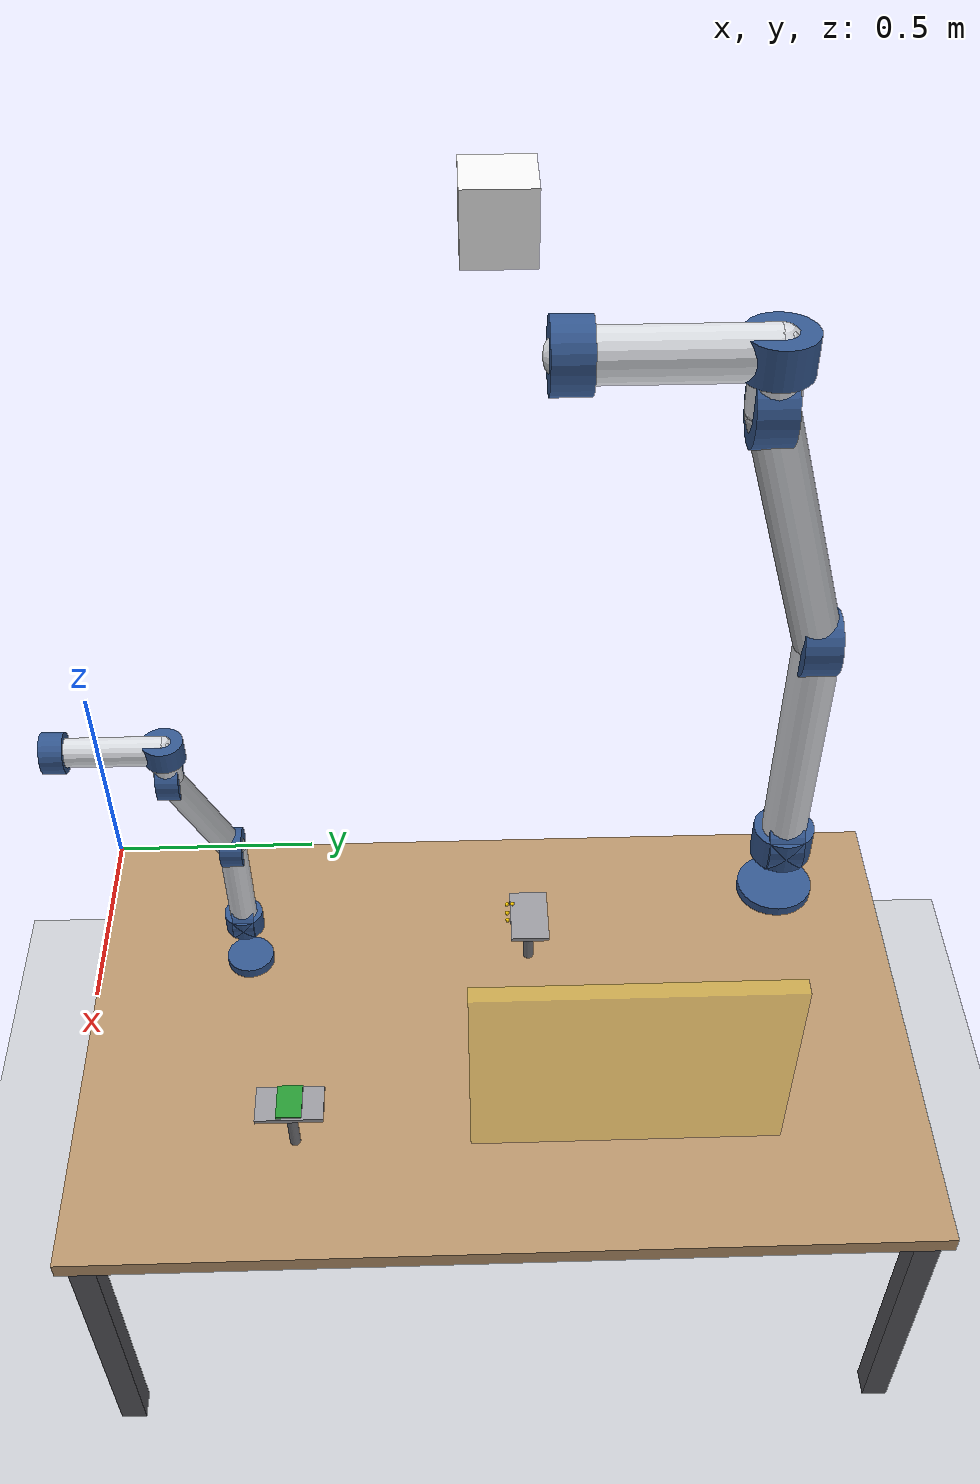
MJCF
<mujoco model="ur3_ur10e_workcell">
  <compiler angle="radian" autolimits="true"/>
  <option timestep="0.001" integrator="implicitfast"/>
  <visual>
    <global offwidth="1600" offheight="900" azimuth="225" elevation="-25"/>
    <quality shadowsize="4096"/>
    <headlight ambient="0.35 0.35 0.35" diffuse="0.55 0.55 0.55"/>
  </visual>
  <asset>
    <texture name="sky" type="skybox" builtin="gradient" rgb1="0.93 0.94 0.96"
             rgb2="0.70 0.74 0.80" width="512" height="512"/>
    <texture name="floor" type="2d" builtin="checker" rgb1="0.82 0.83 0.85"
             rgb2="0.76 0.77 0.79" width="512" height="512"/>
    <material name="floor" texture="floor" texrepeat="8 8"/>
  </asset>
  <default>
    <!-- Robot links never collide physically: the simplified wrist shapes
         overlap, and robot-robot clearance is computed geometrically
         (simulate.py) rather than by contact. -->
    <geom contype="0" conaffinity="0"/>
  </default>
  <worldbody>
    <light pos="1 0.6 3" dir="0 0 -1" diffuse="0.6 0.6 0.6" castshadow="true"/>
    <geom name="floor" type="plane" size="4 4 0.1" pos="0 0 -0.76" material="floor"/>
    <camera name="overview" pos="3.10 -1.35 1.55" xyaxes="0.55 0.83 0 -0.33 0.22 0.92"/>
    <camera name="overhead" pos="0.625 0.9725 1.87" xyaxes="0 -1 0 1 0 0"/>
    <geom name="bench" type="box" size="0.625 0.9725 0.02" pos="0.625 0.9725 -0.02" rgba="0.72 0.58 0.42 1"/>
    <geom type="box" size="0.03 0.03 0.36" pos="0.05 0.05 -0.40" rgba="0.35 0.35 0.37 1"/>
    <geom type="box" size="0.03 0.03 0.36" pos="0.05 1.895 -0.40" rgba="0.35 0.35 0.37 1"/>
    <geom type="box" size="0.03 0.03 0.36" pos="1.2 0.05 -0.40" rgba="0.35 0.35 0.37 1"/>
    <geom type="box" size="0.03 0.03 0.36" pos="1.2 1.895 -0.40" rgba="0.35 0.35 0.37 1"/>
    <geom name="holder_pos3" type="box" size="0.045 0.075 0.005" pos="0.945 0.505 0.14" rgba="0.60 0.60 0.62 1" contype="0" conaffinity="0"/>
    <geom type="cylinder" size="0.012 0.0675" pos="0.945 0.505 0.0675" rgba="0.45 0.45 0.47 1" contype="0" conaffinity="0"/>
    <geom name="holder_pos4" type="box" size="0.075 0.045 0.005" pos="0.405 1.055 0.14" rgba="0.60 0.60 0.62 1" contype="0" conaffinity="0"/>
    <geom type="cylinder" size="0.012 0.0675" pos="0.405 1.055 0.0675" rgba="0.45 0.45 0.47 1" contype="0" conaffinity="0"/>
    <site name="solder1" pos="0.368043 1.016237 0.14500000000000002" size="0.005" rgba="1 0.8 0 1"/>
    <site name="solder2" pos="0.368043 1.002775 0.14500000000000002" size="0.005" rgba="1 0.8 0 1"/>
    <site name="solder3" pos="0.39598300000000003 1.002775 0.14500000000000002" size="0.005" rgba="1 0.8 0 1"/>
    <site name="solder4" pos="0.419097 1.002775 0.14500000000000002" size="0.005" rgba="1 0.8 0 1"/>
    <geom name="screen" type="box" size="0.02 0.35 0.25" pos="0.945 1.25 0.25" rgba="1 0.9 0 0.25" contype="0" conaffinity="0"/>
    <geom type="box" size="0.06 0.06 0.06" pos="0.625 0.9725 1.95" rgba="0.95 0.95 0.95 1" contype="0" conaffinity="0"/>
    <body name="pcb" mocap="true" pos="0.945 0.505 0.15000000000000002">
      <geom name="pcb" type="box" size="0.042545 0.028067 0.0025"
            rgba="0.15 0.60 0.20 1" contype="0" conaffinity="0"/>
    </body>
    <body name="ur3_base" pos="0.4 0.37 0">
      <geom type="cylinder" size="0.0562 0.012" pos="0 0 0.012" rgba="0.20 0.34 0.56 1" contype="0" conaffinity="0" mass="1"/>
      <body name="ur3_link1" pos="0 -0 0.152" quat="1 0 0 0">
        <joint name="ur3_j1" type="hinge" axis="0 0 1" range="-6.2832 6.2832" damping="0.5" armature="0.05"/>
        <geom name="ur3_housing1" type="cylinder" size="0.0450 0.0250" rgba="0.20 0.34 0.56 1" mass="2.0000" group="1"/>
        <body name="ur3_link2" pos="0 -0 0" quat="0.5 0.5 -0.5 0.5">
          <joint name="ur3_j2" type="hinge" axis="0 0 1" range="-6.2832 6.2832" damping="0.5" armature="0.05"/>
          <geom name="ur3_housing2" type="cylinder" size="0.0450 0.0250" rgba="0.20 0.34 0.56 1" mass="1.3680" group="1"/>
          <geom name="ur3_link2" type="capsule" fromto="0 0 0 0.244 -0 0" size="0.0320" rgba="0.86 0.87 0.89 1" mass="2.0520" group="1"/>
          <body name="ur3_link3" pos="0.244 -0 0" quat="1 0 0 0">
            <joint name="ur3_j3" type="hinge" axis="0 0 1" range="-6.2832 6.2832" damping="0.5" armature="0.05"/>
            <geom name="ur3_housing3" type="cylinder" size="0.0450 0.0250" rgba="0.20 0.34 0.56 1" mass="0.5040" group="1"/>
            <geom name="ur3_link3" type="capsule" fromto="0 0 0 0.213 -0 0.112" size="0.0320" rgba="0.86 0.87 0.89 1" mass="0.7560" group="1"/>
            <body name="ur3_link4" pos="0.213 -0 0.112" quat="0.707107 0 0 -0.707107">
              <joint name="ur3_j4" type="hinge" axis="0 0 1" range="-6.2832 6.2832" damping="0.5" armature="0.05"/>
              <geom name="ur3_housing4" type="cylinder" size="0.0450 0.0250" rgba="0.20 0.34 0.56 1" mass="0.3200" group="1"/>
              <geom name="ur3_link4" type="capsule" fromto="0 0 0 0 0.085 5.20475e-18" size="0.0320" rgba="0.86 0.87 0.89 1" mass="0.4800" group="1"/>
              <body name="ur3_link5" pos="0 0.085 5.20475e-18" quat="0.707107 -0.707107 0 0">
                <joint name="ur3_j5" type="hinge" axis="0 0 1" range="-6.2832 6.2832" damping="0.5" armature="0.05"/>
                <geom name="ur3_housing5" type="cylinder" size="0.0450 0.0250" rgba="0.20 0.34 0.56 1" mass="0.3200" group="1"/>
                <geom name="ur3_link5" type="capsule" fromto="0 0 0 0 -0.234 1.43284e-17" size="0.0320" rgba="0.86 0.87 0.89 1" mass="0.4800" group="1"/>
                <body name="ur3_link6" pos="0 -0.234 1.43284e-17" quat="0.707107 0.707107 0 0">
                  <joint name="ur3_j6" type="hinge" axis="0 0 1" range="-6.2832 6.2832" damping="0.5" armature="0.05"/>
                  <geom name="ur3_housing6" type="cylinder" size="0.0450 0.0250" rgba="0.20 0.34 0.56 1" mass="0.1400" group="1"/>
                  <geom name="ur3_flange" type="capsule" fromto="0 0 -0.2340 0 0 -0.1521" size="0.0288" rgba="0.86 0.87 0.89 1" mass="0.2100" group="1"/>
                  <geom name="ur3_tool" type="cylinder" fromto="0 0 -0.1521 0 0 -0.030" size="0.022" rgba="0.10 0.70 0.70 1" mass="0.3" group="1"/>
                  <geom name="ur3_finger_a" type="box" size="0.006 0.012 0.022" pos="0.018 0 -0.012" rgba="0.25 0.25 0.27 1" mass="0.02" group="1"/>
                  <geom name="ur3_finger_b" type="box" size="0.006 0.012 0.022" pos="-0.018 0 -0.012" rgba="0.25 0.25 0.27 1" mass="0.02" group="1"/>
                  <site name="ur3_tcp" pos="0 0 0" size="0.006" rgba="1 0 0 0"/>
                </body>
              </body>
            </body>
          </body>
        </body>
      </body>
    </body>
    <body name="ur10e_base" pos="0.2 1.695 0">
      <geom type="cylinder" size="0.0938 0.012" pos="0 0 0.012" rgba="0.20 0.34 0.56 1" contype="0" conaffinity="0" mass="1"/>
      <body name="ur10e_link1" pos="0 -0 0.18" quat="1 0 0 0">
        <joint name="ur10e_j1" type="hinge" axis="0 0 1" range="-6.2832 6.2832" damping="2.0" armature="0.3"/>
        <geom name="ur10e_housing1" type="cylinder" size="0.0750 0.0425" rgba="0.20 0.34 0.56 1" mass="7.3690" group="1"/>
        <body name="ur10e_link2" pos="0 -0 0" quat="0.5 0.5 -0.5 0.5">
          <joint name="ur10e_j2" type="hinge" axis="0 0 1" range="-6.2832 6.2832" damping="2.0" armature="0.3"/>
          <geom name="ur10e_housing2" type="cylinder" size="0.0750 0.0425" rgba="0.20 0.34 0.56 1" mass="5.2204" group="1"/>
          <geom name="ur10e_link2" type="capsule" fromto="0 0 0 0.6127 -0 0" size="0.0550" rgba="0.86 0.87 0.89 1" mass="7.8306" group="1"/>
          <body name="ur10e_link3" pos="0.6127 -0 0" quat="1 0 0 0">
            <joint name="ur10e_j3" type="hinge" axis="0 0 1" range="-6.2832 6.2832" damping="2.0" armature="0.3"/>
            <geom name="ur10e_housing3" type="cylinder" size="0.0750 0.0425" rgba="0.20 0.34 0.56 1" mass="1.5956" group="1"/>
            <geom name="ur10e_link3" type="capsule" fromto="0 0 0 0.5716 -0 0.1741" size="0.0550" rgba="0.86 0.87 0.89 1" mass="2.3934" group="1"/>
            <body name="ur10e_link4" pos="0.5716 -0 0.1741" quat="0.707107 0 0 -0.707107">
              <joint name="ur10e_j4" type="hinge" axis="0 0 1" range="-6.2832 6.2832" damping="2.0" armature="0.3"/>
              <geom name="ur10e_housing4" type="cylinder" size="0.0750 0.0425" rgba="0.20 0.34 0.56 1" mass="0.8400" group="1"/>
              <geom name="ur10e_link4" type="capsule" fromto="0 0 0 0 0.1198 7.33563e-18" size="0.0550" rgba="0.86 0.87 0.89 1" mass="1.2600" group="1"/>
              <body name="ur10e_link5" pos="0 0.1198 7.33563e-18" quat="0.707107 -0.707107 0 0">
                <joint name="ur10e_j5" type="hinge" axis="0 0 1" range="-6.2832 6.2832" damping="2.0" armature="0.3"/>
                <geom name="ur10e_housing5" type="cylinder" size="0.0750 0.0425" rgba="0.20 0.34 0.56 1" mass="0.7920" group="1"/>
                <geom name="ur10e_link5" type="capsule" fromto="0 0 0 0 -0.3965 2.42786e-17" size="0.0550" rgba="0.86 0.87 0.89 1" mass="1.1880" group="1"/>
                <body name="ur10e_link6" pos="0 -0.3965 2.42786e-17" quat="0.707107 0.707107 0 0">
                  <joint name="ur10e_j6" type="hinge" axis="0 0 1" range="-6.2832 6.2832" damping="2.0" armature="0.3"/>
                  <geom name="ur10e_housing6" type="cylinder" size="0.0750 0.0425" rgba="0.20 0.34 0.56 1" mass="0.2460" group="1"/>
                  <geom name="ur10e_flange" type="capsule" fromto="0 0 -0.3965 0 0 -0.2800" size="0.0495" rgba="0.86 0.87 0.89 1" mass="0.3690" group="1"/>
                  <geom name="ur10e_tool" type="cylinder" fromto="0 0 -0.2800 0 0 -0.060" size="0.020" rgba="1.00 0.60 0.10 1" mass="0.4" group="1"/>
                  <geom name="ur10e_tip" type="capsule" fromto="0 0 -0.060 0 0 0" size="0.004" rgba="0.75 0.75 0.78 1" mass="0.02" group="1"/>
                  <site name="ur10e_tcp" pos="0 0 0" size="0.006" rgba="1 0 0 0"/>
                </body>
              </body>
            </body>
          </body>
        </body>
      </body>
    </body>
  </worldbody>
  <actuator>
    <motor name="ur3_m1" joint="ur3_j1" gear="1" ctrlrange="-56 56" ctrllimited="true"/>
    <motor name="ur3_m2" joint="ur3_j2" gear="1" ctrlrange="-56 56" ctrllimited="true"/>
    <motor name="ur3_m3" joint="ur3_j3" gear="1" ctrlrange="-28 28" ctrllimited="true"/>
    <motor name="ur3_m4" joint="ur3_j4" gear="1" ctrlrange="-12 12" ctrllimited="true"/>
    <motor name="ur3_m5" joint="ur3_j5" gear="1" ctrlrange="-12 12" ctrllimited="true"/>
    <motor name="ur3_m6" joint="ur3_j6" gear="1" ctrlrange="-12 12" ctrllimited="true"/>
    <motor name="ur10e_m1" joint="ur10e_j1" gear="1" ctrlrange="-330 330" ctrllimited="true"/>
    <motor name="ur10e_m2" joint="ur10e_j2" gear="1" ctrlrange="-330 330" ctrllimited="true"/>
    <motor name="ur10e_m3" joint="ur10e_j3" gear="1" ctrlrange="-150 150" ctrllimited="true"/>
    <motor name="ur10e_m4" joint="ur10e_j4" gear="1" ctrlrange="-56 56" ctrllimited="true"/>
    <motor name="ur10e_m5" joint="ur10e_j5" gear="1" ctrlrange="-56 56" ctrllimited="true"/>
    <motor name="ur10e_m6" joint="ur10e_j6" gear="1" ctrlrange="-56 56" ctrllimited="true"/>
  </actuator>
</mujoco>
